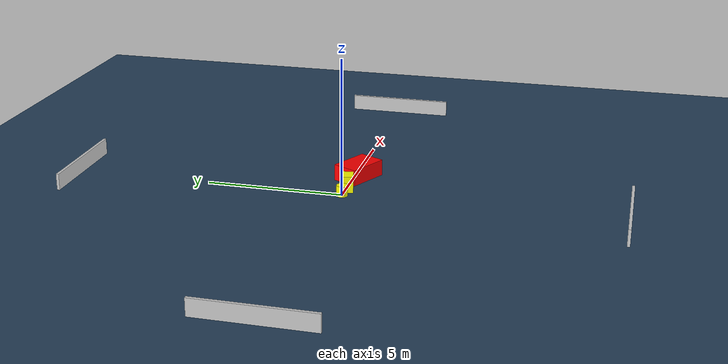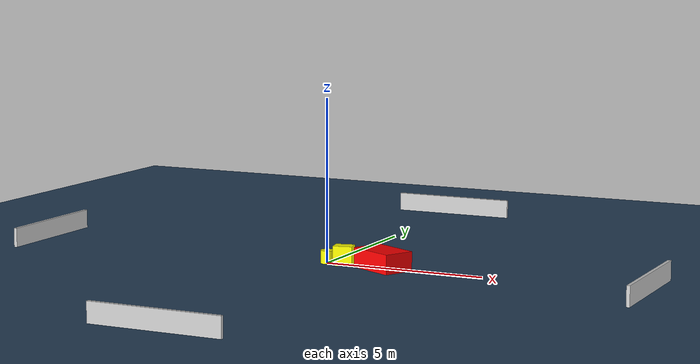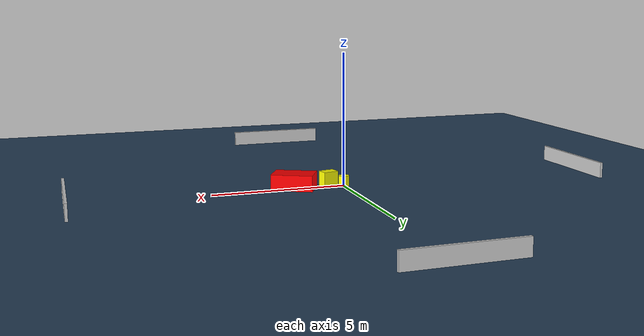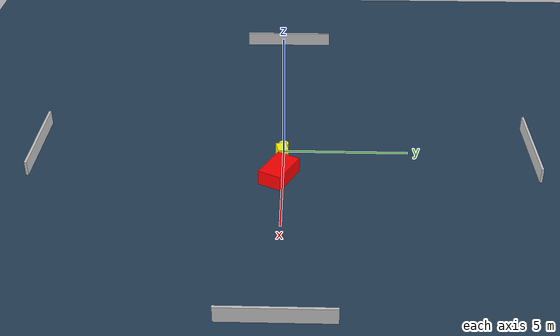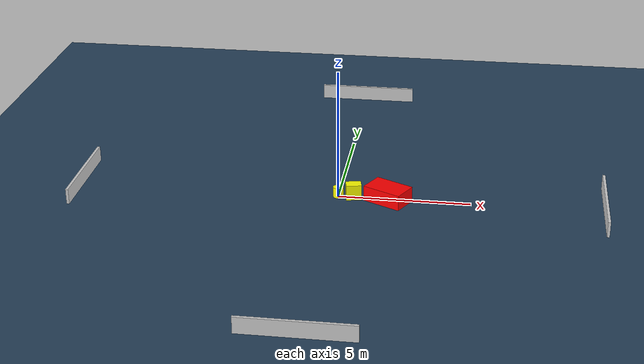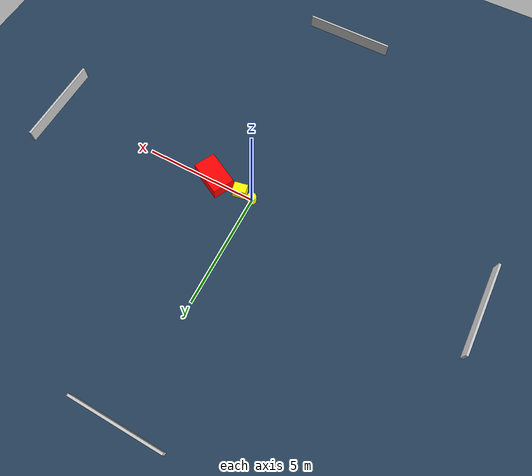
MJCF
<?xml version="1.0" ?>
<mujoco model="generated_environment">
  <option timestep="0.01" integrator="RK4" cone="elliptic"/>
  <default>
    <geom density="1"/>
  </default>
  <asset>
    <texture builtin="gradient" height="3072" name="skybox" rgb1="0.3 0.5 0.7" rgb2="0 0 0" type="skybox" width="512"/>
    <texture builtin="checker" height="300" name="groundplane" rgb1="0.2 0.3 0.4" rgb2="0.1 0.2 0.3" type="2d" width="300"/>
    <material name="groundplane" reflectance="0.2" texrepeat="5 5" texture="groundplane"/>
  </asset>
  <worldbody>
    <light dir="0 0 -1" directional="true" pos="0 0 1.5"/>
    <geom condim="3" friction="0.5 0.005 0.001" material="groundplane" name="floor" pos="0 0 0" size="0 0 0.05" type="plane"/>
    <body name="walls">
      <geom name="wall_1" condim="4" pos="-10.0 0.0 0.3" rgba="0.800000011920929 0.800000011920929 0.800000011920929 1.0" size="0.05 2.0 0.3" type="box"/>
      <geom name="wall_2" condim="4" pos="10.0 0.0 0.3" rgba="0.800000011920929 0.800000011920929 0.800000011920929 1.0" size="0.05 2.0 0.3" type="box"/>
      <geom name="wall_3" condim="4" pos="0.0 -10.0 0.3" rgba="0.800000011920929 0.800000011920929 0.800000011920929 1.0" size="2.0 0.05 0.3" type="box"/>
      <geom name="wall_4" condim="4" pos="0.0 10.0 0.3" rgba="0.800000011920929 0.800000011920929 0.800000011920929 1.0" size="2.0 0.05 0.3" type="box"/>
    </body>
    <body name="robot">
      <joint name="joint_x" type="slide" pos="0 0 0" axis="1 0 0"/>
      <joint name="joint_y" type="slide" pos="0 0 0" axis="0 1 0"/>
      <geom name="robot" type="cylinder" pos="0.0 0.0 0.2" size="0.2 0.2 0.0" mass="5.0" friction="1.0 0.005 0.0001" condim="4" rgba="1.0 1.0 0.0 1.0"/>
    </body>
    <body name="obstacle_1_movable">
      <geom name="obstacle_1_movable" condim="4" pos="0.5832193371440996 -0.05354965925635191 0.3" euler="0 0 102.0621268792951" friction="0.0 0.005 0.001" rgba="1.0 1.0 0.0 1.0" size="0.20820364636120436 0.29203032932224654 0.3" type="box" mass="0.1"/>
      <joint type="free"/>
    </body>
    <body name="obstacle_2_static">
      <geom name="obstacle_2_static" condim="4" pos="1.8998070552821336 -0.13572671241496811 0.3" euler="0 0 62.687003293284846" friction="0.0 0.005 0.001" rgba="1.0 0.0 0.0 1.0" size="0.485337214273204 0.775117940257485 0.3" type="box"/>
    </body>
  </worldbody>
  <actuator>
    <motor name="actuator_x" joint="joint_x" gear="1" ctrlrange="-1 1"/>
    <motor name="actuator_y" joint="joint_y" gear="1" ctrlrange="-1 1"/>
  </actuator>
</mujoco>
